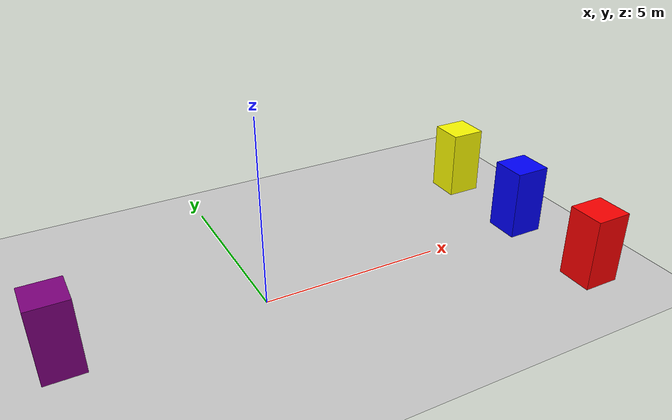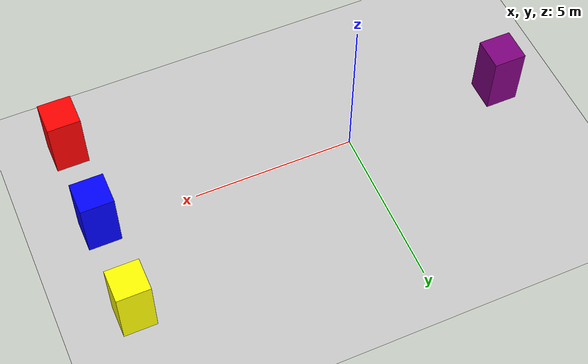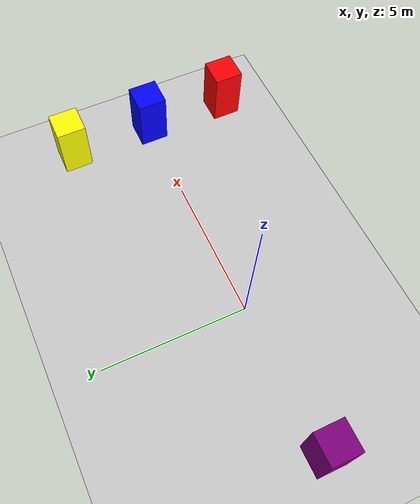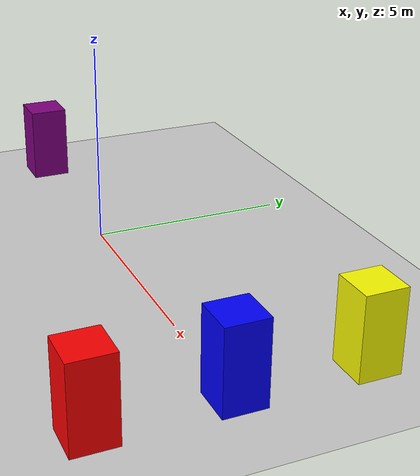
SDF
<?xml version="1.0" ?>
<sdf version="1.8">
  <world name="pioneer_world">
    <physics name="1ms" type="ignored">
      <max_step_size>0.001</max_step_size>
      <real_time_factor>1.0</real_time_factor>
    </physics>
    <plugin filename="ignition-gazebo-physics-system" name="ignition::gazebo::systems::Physics"/>
    <plugin filename="ignition-gazebo-user-commands-system" name="ignition::gazebo::systems::UserCommands"/>
    <plugin filename="ignition-gazebo-scene-broadcaster-system" name="ignition::gazebo::systems::SceneBroadcaster"/>
    <plugin filename="ignition-gazebo-imu-system" name="ignition::gazebo::systems::Imu"/>
    <plugin filename="ignition-gazebo-sensors-system" name="ignition::gazebo::systems::Sensors">
      <render_engine>ogre2</render_engine>
    </plugin>
    <plugin filename="ignition-gazebo-contact-system" name="ignition::gazebo::systems::Contact"/>

    <light type="directional" name="sun">
      <cast_shadows>true</cast_shadows>
      <pose>0 0 10 0 0 0</pose>
      <diffuse>0.8 0.8 0.8 1</diffuse>
      <specular>0.2 0.2 0.2 1</specular>
      <attenuation>
        <range>1000</range>
        <constant>0.9</constant>
        <linear>0.01</linear>
        <quadratic>0.001</quadratic>
      </attenuation>
      <direction>-0.5 0.1 -0.9</direction>
    </light>

    <model name="ground_plane">
      <static>true</static>
      <link name="link">
        <collision name="collision">
          <geometry>
            <plane>
              <normal>0 0 1</normal>
            </plane>
          </geometry>
        </collision>
        <visual name="visual">
          <geometry>
            <plane>
              <normal>0 0 1</normal>
              <size>100 100</size>
            </plane>
          </geometry>
          <material>
            <ambient>0.8 0.8 0.8 1</ambient>
            <diffuse>0.8 0.8 0.8 1</diffuse>
            <specular>0.8 0.8 0.8 1</specular>
          </material>
        </visual>
      </link>
    </model>

    <!-- Red Box -->
    <model name="box_red">
      <static>true</static>
      <pose>8 -3 1 0 0 0</pose>
      <link name="link">
        <visual name="visual">
          <geometry>
            <box>
              <size>1 1 2</size>
            </box>
          </geometry>
          <material>
            <ambient>1 0 0 1</ambient>
            <diffuse>1 0 0 1</diffuse>
            <specular>1 0 0 1</specular>
          </material>
        </visual>
        <collision name="collision">
          <geometry>
            <box>
              <size>1 1 2</size>
            </box>
          </geometry>
        </collision>
      </link>
    </model>

    <!-- Blue Box -->
    <model name="box_blue">
      <static>true</static>
      <pose>8 0 1 0 0 0</pose>
      <link name="link">
        <visual name="visual">
          <geometry>
            <box>
              <size>1 1 2</size>
            </box>
          </geometry>
          <material>
            <ambient>0 0 1 1</ambient>
            <diffuse>0 0 1 1</diffuse>
            <specular>0 0 1 1</specular>
          </material>
        </visual>
        <collision name="collision">
          <geometry>
            <box>
              <size>1 1 2</size>
            </box>
          </geometry>
        </collision>
      </link>
    </model>

    <!-- Yellow Box -->
    <model name="box_yellow">
      <static>true</static>
      <pose>8 3 1 0 0 0</pose>
      <link name="link">
        <visual name="visual">
          <geometry>
            <box>
              <size>1 1 2</size>
            </box>
          </geometry>
          <material>
            <ambient>1 1 0 1</ambient>
            <diffuse>1 1 0 1</diffuse>
            <specular>1 1 0 1</specular>
          </material>
        </visual>
        <collision name="collision">
          <geometry>
            <box>
              <size>1 1 2</size>
            </box>
          </geometry>
        </collision>
      </link>
    </model>

    <!-- Purple Box -->
    <model name="box_purple">
      <static>true</static>
      <pose>-5 0 1 0 0 0</pose>
      <link name="link">
        <visual name="visual">
          <geometry>
            <box>
              <size>1 1 2</size>
            </box>
          </geometry>
          <material>
            <ambient>0.5 0 0.5 1</ambient>
            <diffuse>0.5 0 0.5 1</diffuse>
            <specular>0.5 0 0.5 1</specular>
          </material>
        </visual>
        <collision name="collision">
          <geometry>
            <box>
              <size>1 1 2</size>
            </box>
          </geometry>
        </collision>
      </link>
    </model>

  </world>
</sdf>
